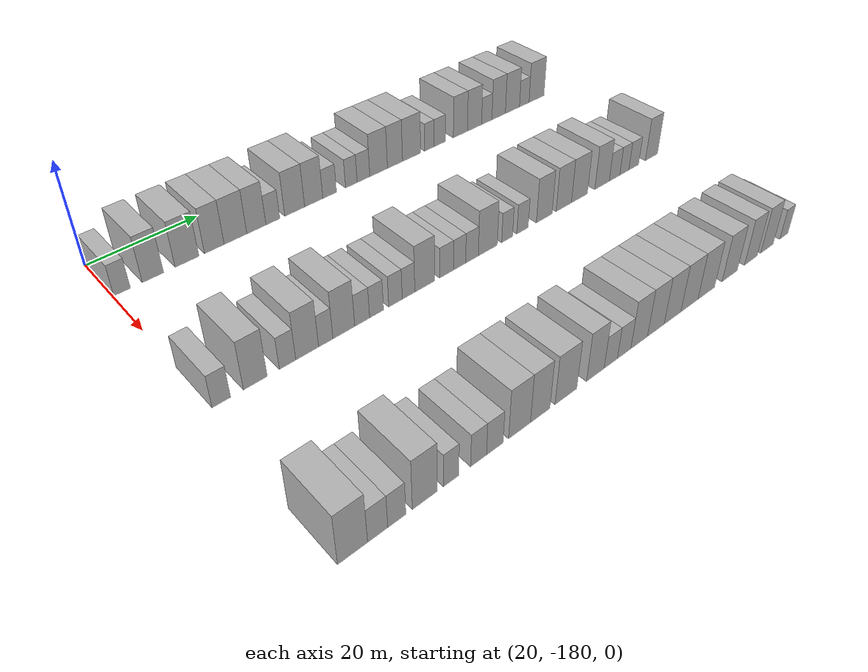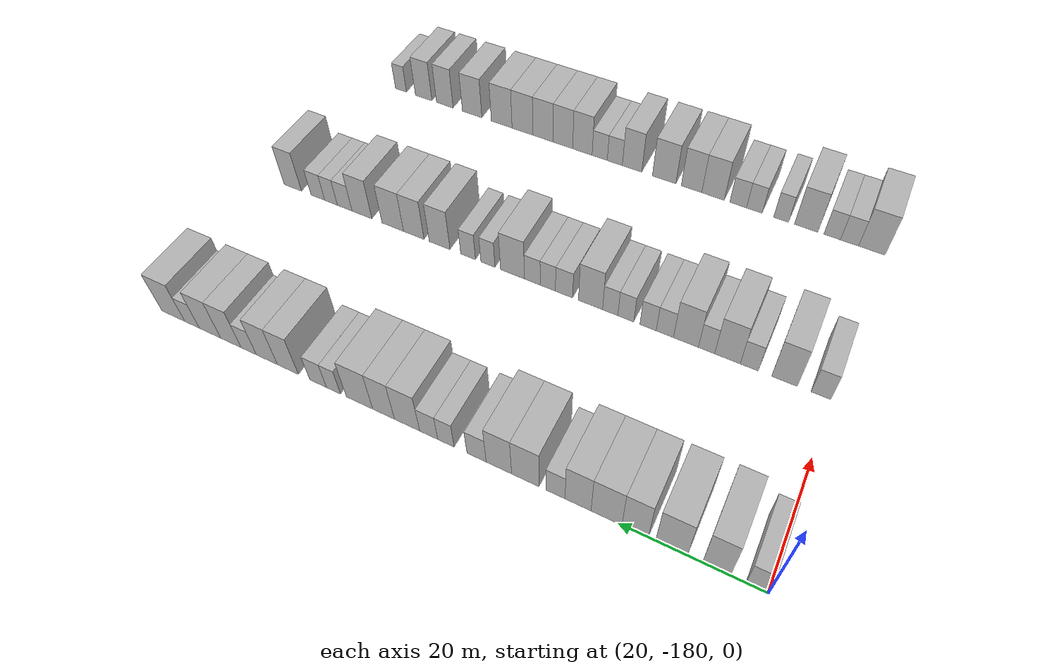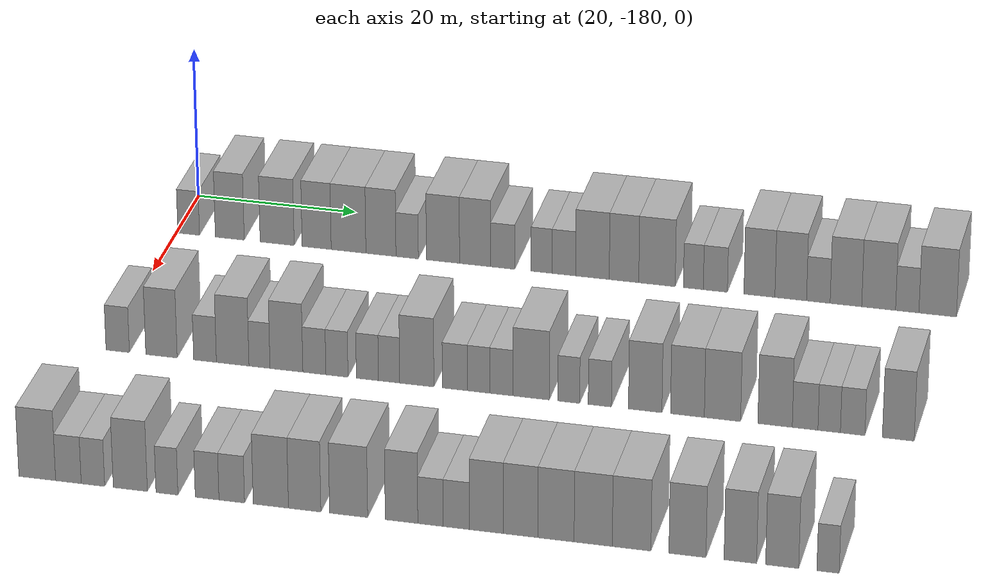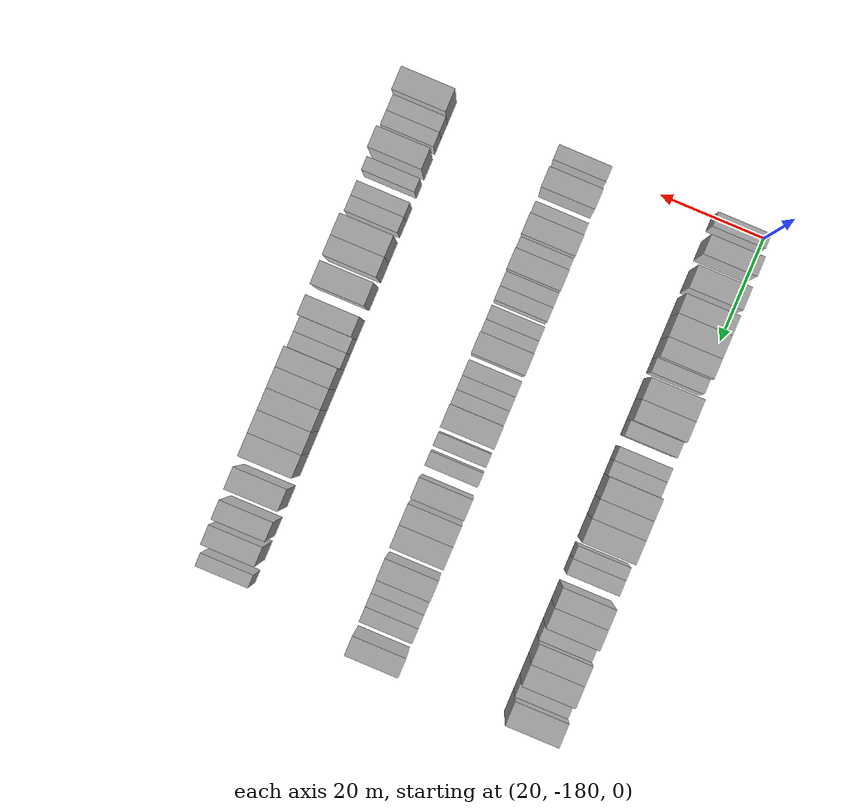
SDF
<sdf version="1.6">
 <world name="default">
  <model name="building_27">
   <static>1</static>
   <pose>25.0000 -178.4467 0 0.000000 0.000000 0.000000</pose>
   <link name="link">
    <pose>0 0 3.00 0 0 0</pose>
    <collision name="collision"><geometry><box><size>10.0000 2.7422 6.0000</size></box></geometry></collision>
    <visual name="visual">
     <cast_shadows>0</cast_shadows>
     <geometry><box><size>10.0000 2.7422 6.0000</size></box></geometry>
     <material>
      <script>
       <uri>model://HANNAS_wall/materials/scripts</uri>
       <uri>model://HANNAS_wall/materials/textures</uri>
       <name>vrc/HANNAS_wall</name>
      </script>
     </material>
    </visual>
   </link>
  </model>
  <model name="building_28">
   <static>1</static>
   <pose>25.0000 -173.2510 0 0.000000 0.000000 0.000000</pose>
   <link name="link">
    <pose>0 0 4.50 0 0 0</pose>
    <collision name="collision"><geometry><box><size>10.0000 3.6491 9.0000</size></box></geometry></collision>
    <visual name="visual">
     <cast_shadows>0</cast_shadows>
     <geometry><box><size>10.0000 3.6491 9.0000</size></box></geometry>
     <material>
      <script>
       <uri>model://HANNAS_wall/materials/scripts</uri>
       <uri>model://HANNAS_wall/materials/textures</uri>
       <name>vrc/HANNAS_wall</name>
      </script>
     </material>
    </visual>
   </link>
  </model>
  <model name="building_29">
   <static>1</static>
   <pose>25.0000 -167.2839 0 0.000000 0.000000 0.000000</pose>
   <link name="link">
    <pose>0 0 4.50 0 0 0</pose>
    <collision name="collision"><geometry><box><size>10.0000 4.2852 9.0000</size></box></geometry></collision>
    <visual name="visual">
     <cast_shadows>0</cast_shadows>
     <geometry><box><size>10.0000 4.2852 9.0000</size></box></geometry>
     <material>
      <script>
       <uri>model://HANNAS_wall/materials/scripts</uri>
       <uri>model://HANNAS_wall/materials/textures</uri>
       <name>vrc/HANNAS_wall</name>
      </script>
     </material>
    </visual>
   </link>
  </model>
  <model name="building_30">
   <static>1</static>
   <pose>25.0000 -162.3185 0 0.000000 0.000000 0.000000</pose>
   <link name="link">
    <pose>0 0 4.50 0 0 0</pose>
    <collision name="collision"><geometry><box><size>10.0000 3.6455 9.0000</size></box></geometry></collision>
    <visual name="visual">
     <cast_shadows>0</cast_shadows>
     <geometry><box><size>10.0000 3.6455 9.0000</size></box></geometry>
     <material>
      <script>
       <uri>model://HANNAS_wall/materials/scripts</uri>
       <uri>model://HANNAS_wall/materials/textures</uri>
       <name>vrc/HANNAS_wall</name>
      </script>
     </material>
    </visual>
   </link>
  </model>
  <model name="building_31">
   <static>1</static>
   <pose>25.0000 -158.3245 0 0.000000 0.000000 0.000000</pose>
   <link name="link">
    <pose>0 0 4.50 0 0 0</pose>
    <collision name="collision"><geometry><box><size>10.0000 4.3426 9.0000</size></box></geometry></collision>
    <visual name="visual">
     <cast_shadows>0</cast_shadows>
     <geometry><box><size>10.0000 4.3426 9.0000</size></box></geometry>
     <material>
      <script>
       <uri>model://HANNAS_wall/materials/scripts</uri>
       <uri>model://HANNAS_wall/materials/textures</uri>
       <name>vrc/HANNAS_wall</name>
      </script>
     </material>
    </visual>
   </link>
  </model>
  <model name="building_32">
   <static>1</static>
   <pose>25.0000 -154.2778 0 0.000000 0.000000 0.000000</pose>
   <link name="link">
    <pose>0 0 4.50 0 0 0</pose>
    <collision name="collision"><geometry><box><size>10.0000 3.7507 9.0000</size></box></geometry></collision>
    <visual name="visual">
     <cast_shadows>0</cast_shadows>
     <geometry><box><size>10.0000 3.7507 9.0000</size></box></geometry>
     <material>
      <script>
       <uri>model://HANNAS_wall/materials/scripts</uri>
       <uri>model://HANNAS_wall/materials/textures</uri>
       <name>vrc/HANNAS_wall</name>
      </script>
     </material>
    </visual>
   </link>
  </model>
  <model name="building_33">
   <static>1</static>
   <pose>25.0000 -151.0073 0 0.000000 0.000000 0.000000</pose>
   <link name="link">
    <pose>0 0 3.00 0 0 0</pose>
    <collision name="collision"><geometry><box><size>10.0000 2.7904 6.0000</size></box></geometry></collision>
    <visual name="visual">
     <cast_shadows>0</cast_shadows>
     <geometry><box><size>10.0000 2.7904 6.0000</size></box></geometry>
     <material>
      <script>
       <uri>model://HANNAS_wall/materials/scripts</uri>
       <uri>model://HANNAS_wall/materials/textures</uri>
       <name>vrc/HANNAS_wall</name>
      </script>
     </material>
    </visual>
   </link>
  </model>
  <model name="building_34">
   <static>1</static>
   <pose>25.0000 -146.5571 0 0.000000 0.000000 0.000000</pose>
   <link name="link">
    <pose>0 0 4.50 0 0 0</pose>
    <collision name="collision"><geometry><box><size>10.0000 4.1099 9.0000</size></box></geometry></collision>
    <visual name="visual">
     <cast_shadows>0</cast_shadows>
     <geometry><box><size>10.0000 4.1099 9.0000</size></box></geometry>
     <material>
      <script>
       <uri>model://HANNAS_wall/materials/scripts</uri>
       <uri>model://HANNAS_wall/materials/textures</uri>
       <name>vrc/HANNAS_wall</name>
      </script>
     </material>
    </visual>
   </link>
  </model>
  <model name="building_35">
   <static>1</static>
   <pose>25.0000 -142.5649 0 0.000000 0.000000 0.000000</pose>
   <link name="link">
    <pose>0 0 4.50 0 0 0</pose>
    <collision name="collision"><geometry><box><size>10.0000 3.8745 9.0000</size></box></geometry></collision>
    <visual name="visual">
     <cast_shadows>0</cast_shadows>
     <geometry><box><size>10.0000 3.8745 9.0000</size></box></geometry>
     <material>
      <script>
       <uri>model://HANNAS_wall/materials/scripts</uri>
       <uri>model://HANNAS_wall/materials/textures</uri>
       <name>vrc/HANNAS_wall</name>
      </script>
     </material>
    </visual>
   </link>
  </model>
  <model name="building_36">
   <static>1</static>
   <pose>25.0000 -139.1422 0 0.000000 0.000000 0.000000</pose>
   <link name="link">
    <pose>0 0 3.00 0 0 0</pose>
    <collision name="collision"><geometry><box><size>10.0000 2.9710 6.0000</size></box></geometry></collision>
    <visual name="visual">
     <cast_shadows>0</cast_shadows>
     <geometry><box><size>10.0000 2.9710 6.0000</size></box></geometry>
     <material>
      <script>
       <uri>model://HANNAS_wall/materials/scripts</uri>
       <uri>model://HANNAS_wall/materials/textures</uri>
       <name>vrc/HANNAS_wall</name>
      </script>
     </material>
    </visual>
   </link>
  </model>
  <model name="building_37">
   <static>1</static>
   <pose>25.0000 -134.3586 0 0.000000 0.000000 0.000000</pose>
   <link name="link">
    <pose>0 0 3.00 0 0 0</pose>
    <collision name="collision"><geometry><box><size>10.0000 2.5962 6.0000</size></box></geometry></collision>
    <visual name="visual">
     <cast_shadows>0</cast_shadows>
     <geometry><box><size>10.0000 2.5962 6.0000</size></box></geometry>
     <material>
      <script>
       <uri>model://HANNAS_wall/materials/scripts</uri>
       <uri>model://HANNAS_wall/materials/textures</uri>
       <name>vrc/HANNAS_wall</name>
      </script>
     </material>
    </visual>
   </link>
  </model>
  <model name="building_38">
   <static>1</static>
   <pose>25.0000 -131.6134 0 0.000000 0.000000 0.000000</pose>
   <link name="link">
    <pose>0 0 3.00 0 0 0</pose>
    <collision name="collision"><geometry><box><size>10.0000 2.8944 6.0000</size></box></geometry></collision>
    <visual name="visual">
     <cast_shadows>0</cast_shadows>
     <geometry><box><size>10.0000 2.8944 6.0000</size></box></geometry>
     <material>
      <script>
       <uri>model://HANNAS_wall/materials/scripts</uri>
       <uri>model://HANNAS_wall/materials/textures</uri>
       <name>vrc/HANNAS_wall</name>
      </script>
     </material>
    </visual>
   </link>
  </model>
  <model name="building_39">
   <static>1</static>
   <pose>25.0000 -128.1045 0 0.000000 0.000000 0.000000</pose>
   <link name="link">
    <pose>0 0 4.50 0 0 0</pose>
    <collision name="collision"><geometry><box><size>10.0000 4.1233 9.0000</size></box></geometry></collision>
    <visual name="visual">
     <cast_shadows>0</cast_shadows>
     <geometry><box><size>10.0000 4.1233 9.0000</size></box></geometry>
     <material>
      <script>
       <uri>model://HANNAS_wall/materials/scripts</uri>
       <uri>model://HANNAS_wall/materials/textures</uri>
       <name>vrc/HANNAS_wall</name>
      </script>
     </material>
    </visual>
   </link>
  </model>
  <model name="building_40">
   <static>1</static>
   <pose>25.0000 -124.2351 0 0.000000 0.000000 0.000000</pose>
   <link name="link">
    <pose>0 0 4.50 0 0 0</pose>
    <collision name="collision"><geometry><box><size>10.0000 3.6154 9.0000</size></box></geometry></collision>
    <visual name="visual">
     <cast_shadows>0</cast_shadows>
     <geometry><box><size>10.0000 3.6154 9.0000</size></box></geometry>
     <material>
      <script>
       <uri>model://HANNAS_wall/materials/scripts</uri>
       <uri>model://HANNAS_wall/materials/textures</uri>
       <name>vrc/HANNAS_wall</name>
      </script>
     </material>
    </visual>
   </link>
  </model>
  <model name="building_41">
   <static>1</static>
   <pose>25.0000 -120.2014 0 0.000000 0.000000 0.000000</pose>
   <link name="link">
    <pose>0 0 4.50 0 0 0</pose>
    <collision name="collision"><geometry><box><size>10.0000 4.4520 9.0000</size></box></geometry></collision>
    <visual name="visual">
     <cast_shadows>0</cast_shadows>
     <geometry><box><size>10.0000 4.4520 9.0000</size></box></geometry>
     <material>
      <script>
       <uri>model://HANNAS_wall/materials/scripts</uri>
       <uri>model://HANNAS_wall/materials/textures</uri>
       <name>vrc/HANNAS_wall</name>
      </script>
     </material>
    </visual>
   </link>
  </model>
  <model name="building_42">
   <static>1</static>
   <pose>25.0000 -115.7638 0 0.000000 0.000000 0.000000</pose>
   <link name="link">
    <pose>0 0 3.00 0 0 0</pose>
    <collision name="collision"><geometry><box><size>10.0000 2.4232 6.0000</size></box></geometry></collision>
    <visual name="visual">
     <cast_shadows>0</cast_shadows>
     <geometry><box><size>10.0000 2.4232 6.0000</size></box></geometry>
     <material>
      <script>
       <uri>model://HANNAS_wall/materials/scripts</uri>
       <uri>model://HANNAS_wall/materials/textures</uri>
       <name>vrc/HANNAS_wall</name>
      </script>
     </material>
    </visual>
   </link>
  </model>
  <model name="building_43">
   <static>1</static>
   <pose>25.0000 -113.0874 0 0.000000 0.000000 0.000000</pose>
   <link name="link">
    <pose>0 0 3.00 0 0 0</pose>
    <collision name="collision"><geometry><box><size>10.0000 2.9295 6.0000</size></box></geometry></collision>
    <visual name="visual">
     <cast_shadows>0</cast_shadows>
     <geometry><box><size>10.0000 2.9295 6.0000</size></box></geometry>
     <material>
      <script>
       <uri>model://HANNAS_wall/materials/scripts</uri>
       <uri>model://HANNAS_wall/materials/textures</uri>
       <name>vrc/HANNAS_wall</name>
      </script>
     </material>
    </visual>
   </link>
  </model>
  <model name="building_44">
   <static>1</static>
   <pose>25.0000 -107.7457 0 0.000000 0.000000 0.000000</pose>
   <link name="link">
    <pose>0 0 4.50 0 0 0</pose>
    <collision name="collision"><geometry><box><size>10.0000 3.7540 9.0000</size></box></geometry></collision>
    <visual name="visual">
     <cast_shadows>0</cast_shadows>
     <geometry><box><size>10.0000 3.7540 9.0000</size></box></geometry>
     <material>
      <script>
       <uri>model://HANNAS_wall/materials/scripts</uri>
       <uri>model://HANNAS_wall/materials/textures</uri>
       <name>vrc/HANNAS_wall</name>
      </script>
     </material>
    </visual>
   </link>
  </model>
  <model name="building_45">
   <static>1</static>
   <pose>25.0000 -103.9578 0 0.000000 0.000000 0.000000</pose>
   <link name="link">
    <pose>0 0 4.50 0 0 0</pose>
    <collision name="collision"><geometry><box><size>10.0000 3.8217 9.0000</size></box></geometry></collision>
    <visual name="visual">
     <cast_shadows>0</cast_shadows>
     <geometry><box><size>10.0000 3.8217 9.0000</size></box></geometry>
     <material>
      <script>
       <uri>model://HANNAS_wall/materials/scripts</uri>
       <uri>model://HANNAS_wall/materials/textures</uri>
       <name>vrc/HANNAS_wall</name>
      </script>
     </material>
    </visual>
   </link>
  </model>
  <model name="building_46">
   <static>1</static>
   <pose>25.0000 -100.6220 0 0.000000 0.000000 0.000000</pose>
   <link name="link">
    <pose>0 0 3.00 0 0 0</pose>
    <collision name="collision"><geometry><box><size>10.0000 2.8498 6.0000</size></box></geometry></collision>
    <visual name="visual">
     <cast_shadows>0</cast_shadows>
     <geometry><box><size>10.0000 2.8498 6.0000</size></box></geometry>
     <material>
      <script>
       <uri>model://HANNAS_wall/materials/scripts</uri>
       <uri>model://HANNAS_wall/materials/textures</uri>
       <name>vrc/HANNAS_wall</name>
      </script>
     </material>
    </visual>
   </link>
  </model>
  <model name="building_47">
   <static>1</static>
   <pose>25.0000 -97.2985 0 0.000000 0.000000 0.000000</pose>
   <link name="link">
    <pose>0 0 4.50 0 0 0</pose>
    <collision name="collision"><geometry><box><size>10.0000 3.7972 9.0000</size></box></geometry></collision>
    <visual name="visual">
     <cast_shadows>0</cast_shadows>
     <geometry><box><size>10.0000 3.7972 9.0000</size></box></geometry>
     <material>
      <script>
       <uri>model://HANNAS_wall/materials/scripts</uri>
       <uri>model://HANNAS_wall/materials/textures</uri>
       <name>vrc/HANNAS_wall</name>
      </script>
     </material>
    </visual>
   </link>
  </model>
  <model name="building_48">
   <static>1</static>
   <pose>25.0000 -93.3656 0 0.000000 0.000000 0.000000</pose>
   <link name="link">
    <pose>0 0 4.50 0 0 0</pose>
    <collision name="collision"><geometry><box><size>10.0000 4.0687 9.0000</size></box></geometry></collision>
    <visual name="visual">
     <cast_shadows>0</cast_shadows>
     <geometry><box><size>10.0000 4.0687 9.0000</size></box></geometry>
     <material>
      <script>
       <uri>model://HANNAS_wall/materials/scripts</uri>
       <uri>model://HANNAS_wall/materials/textures</uri>
       <name>vrc/HANNAS_wall</name>
      </script>
     </material>
    </visual>
   </link>
  </model>
  <model name="building_49">
   <static>1</static>
   <pose>25.0000 -89.9338 0 0.000000 0.000000 0.000000</pose>
   <link name="link">
    <pose>0 0 3.00 0 0 0</pose>
    <collision name="collision"><geometry><box><size>10.0000 2.7948 6.0000</size></box></geometry></collision>
    <visual name="visual">
     <cast_shadows>0</cast_shadows>
     <geometry><box><size>10.0000 2.7948 6.0000</size></box></geometry>
     <material>
      <script>
       <uri>model://HANNAS_wall/materials/scripts</uri>
       <uri>model://HANNAS_wall/materials/textures</uri>
       <name>vrc/HANNAS_wall</name>
      </script>
     </material>
    </visual>
   </link>
  </model>
  <model name="building_50">
   <static>1</static>
   <pose>25.0000 -86.2893 0 0.000000 0.000000 0.000000</pose>
   <link name="link">
    <pose>0 0 4.50 0 0 0</pose>
    <collision name="collision"><geometry><box><size>10.0000 4.4942 9.0000</size></box></geometry></collision>
    <visual name="visual">
     <cast_shadows>0</cast_shadows>
     <geometry><box><size>10.0000 4.4942 9.0000</size></box></geometry>
     <material>
      <script>
       <uri>model://HANNAS_wall/materials/scripts</uri>
       <uri>model://HANNAS_wall/materials/textures</uri>
       <name>vrc/HANNAS_wall</name>
      </script>
     </material>
    </visual>
   </link>
  </model>
  <model name="building_167">
   <static>1</static>
   <pose>55.0000 -178.4823 0 0.000000 0.000000 0.000000</pose>
   <link name="link">
    <pose>0 0 3.00 0 0 0</pose>
    <collision name="collision"><geometry><box><size>10.0000 2.8400 6.0000</size></box></geometry></collision>
    <visual name="visual">
     <cast_shadows>0</cast_shadows>
     <geometry><box><size>10.0000 2.8400 6.0000</size></box></geometry>
     <material>
      <script>
       <uri>model://HANNAS_wall/materials/scripts</uri>
       <uri>model://HANNAS_wall/materials/textures</uri>
       <name>vrc/HANNAS_wall</name>
      </script>
     </material>
    </visual>
   </link>
  </model>
  <model name="building_168">
   <static>1</static>
   <pose>55.0000 -173.1579 0 0.000000 0.000000 0.000000</pose>
   <link name="link">
    <pose>0 0 4.50 0 0 0</pose>
    <collision name="collision"><geometry><box><size>10.0000 3.8088 9.0000</size></box></geometry></collision>
    <visual name="visual">
     <cast_shadows>0</cast_shadows>
     <geometry><box><size>10.0000 3.8088 9.0000</size></box></geometry>
     <material>
      <script>
       <uri>model://HANNAS_wall/materials/scripts</uri>
       <uri>model://HANNAS_wall/materials/textures</uri>
       <name>vrc/HANNAS_wall</name>
      </script>
     </material>
    </visual>
   </link>
  </model>
  <model name="building_169">
   <static>1</static>
   <pose>55.0000 -167.8806 0 0.000000 0.000000 0.000000</pose>
   <link name="link">
    <pose>0 0 3.00 0 0 0</pose>
    <collision name="collision"><geometry><box><size>10.0000 2.7459 6.0000</size></box></geometry></collision>
    <visual name="visual">
     <cast_shadows>0</cast_shadows>
     <geometry><box><size>10.0000 2.7459 6.0000</size></box></geometry>
     <material>
      <script>
       <uri>model://HANNAS_wall/materials/scripts</uri>
       <uri>model://HANNAS_wall/materials/textures</uri>
       <name>vrc/HANNAS_wall</name>
      </script>
     </material>
    </visual>
   </link>
  </model>
  <model name="building_170">
   <static>1</static>
   <pose>55.0000 -164.5421 0 0.000000 0.000000 0.000000</pose>
   <link name="link">
    <pose>0 0 4.50 0 0 0</pose>
    <collision name="collision"><geometry><box><size>10.0000 3.9311 9.0000</size></box></geometry></collision>
    <visual name="visual">
     <cast_shadows>0</cast_shadows>
     <geometry><box><size>10.0000 3.9311 9.0000</size></box></geometry>
     <material>
      <script>
       <uri>model://HANNAS_wall/materials/scripts</uri>
       <uri>model://HANNAS_wall/materials/textures</uri>
       <name>vrc/HANNAS_wall</name>
      </script>
     </material>
    </visual>
   </link>
  </model>
  <model name="building_171">
   <static>1</static>
   <pose>55.0000 -161.3103 0 0.000000 0.000000 0.000000</pose>
   <link name="link">
    <pose>0 0 3.00 0 0 0</pose>
    <collision name="collision"><geometry><box><size>10.0000 2.5326 6.0000</size></box></geometry></collision>
    <visual name="visual">
     <cast_shadows>0</cast_shadows>
     <geometry><box><size>10.0000 2.5326 6.0000</size></box></geometry>
     <material>
      <script>
       <uri>model://HANNAS_wall/materials/scripts</uri>
       <uri>model://HANNAS_wall/materials/textures</uri>
       <name>vrc/HANNAS_wall</name>
      </script>
     </material>
    </visual>
   </link>
  </model>
  <model name="building_172">
   <static>1</static>
   <pose>55.0000 -158.0698 0 0.000000 0.000000 0.000000</pose>
   <link name="link">
    <pose>0 0 4.50 0 0 0</pose>
    <collision name="collision"><geometry><box><size>10.0000 3.9484 9.0000</size></box></geometry></collision>
    <visual name="visual">
     <cast_shadows>0</cast_shadows>
     <geometry><box><size>10.0000 3.9484 9.0000</size></box></geometry>
     <material>
      <script>
       <uri>model://HANNAS_wall/materials/scripts</uri>
       <uri>model://HANNAS_wall/materials/textures</uri>
       <name>vrc/HANNAS_wall</name>
      </script>
     </material>
    </visual>
   </link>
  </model>
  <model name="building_173">
   <static>1</static>
   <pose>55.0000 -154.7131 0 0.000000 0.000000 0.000000</pose>
   <link name="link">
    <pose>0 0 3.00 0 0 0</pose>
    <collision name="collision"><geometry><box><size>10.0000 2.7648 6.0000</size></box></geometry></collision>
    <visual name="visual">
     <cast_shadows>0</cast_shadows>
     <geometry><box><size>10.0000 2.7648 6.0000</size></box></geometry>
     <material>
      <script>
       <uri>model://HANNAS_wall/materials/scripts</uri>
       <uri>model://HANNAS_wall/materials/textures</uri>
       <name>vrc/HANNAS_wall</name>
      </script>
     </material>
    </visual>
   </link>
  </model>
  <model name="building_174">
   <static>1</static>
   <pose>55.0000 -152.0063 0 0.000000 0.000000 0.000000</pose>
   <link name="link">
    <pose>0 0 3.00 0 0 0</pose>
    <collision name="collision"><geometry><box><size>10.0000 2.6489 6.0000</size></box></geometry></collision>
    <visual name="visual">
     <cast_shadows>0</cast_shadows>
     <geometry><box><size>10.0000 2.6489 6.0000</size></box></geometry>
     <material>
      <script>
       <uri>model://HANNAS_wall/materials/scripts</uri>
       <uri>model://HANNAS_wall/materials/textures</uri>
       <name>vrc/HANNAS_wall</name>
      </script>
     </material>
    </visual>
   </link>
  </model>
  <model name="building_175">
   <static>1</static>
   <pose>55.0000 -148.3621 0 0.000000 0.000000 0.000000</pose>
   <link name="link">
    <pose>0 0 3.00 0 0 0</pose>
    <collision name="collision"><geometry><box><size>10.0000 2.6394 6.0000</size></box></geometry></collision>
    <visual name="visual">
     <cast_shadows>0</cast_shadows>
     <geometry><box><size>10.0000 2.6394 6.0000</size></box></geometry>
     <material>
      <script>
       <uri>model://HANNAS_wall/materials/scripts</uri>
       <uri>model://HANNAS_wall/materials/textures</uri>
       <name>vrc/HANNAS_wall</name>
      </script>
     </material>
    </visual>
   </link>
  </model>
  <model name="building_176">
   <static>1</static>
   <pose>55.0000 -145.7772 0 0.000000 0.000000 0.000000</pose>
   <link name="link">
    <pose>0 0 3.00 0 0 0</pose>
    <collision name="collision"><geometry><box><size>10.0000 2.5305 6.0000</size></box></geometry></collision>
    <visual name="visual">
     <cast_shadows>0</cast_shadows>
     <geometry><box><size>10.0000 2.5305 6.0000</size></box></geometry>
     <material>
      <script>
       <uri>model://HANNAS_wall/materials/scripts</uri>
       <uri>model://HANNAS_wall/materials/textures</uri>
       <name>vrc/HANNAS_wall</name>
      </script>
     </material>
    </visual>
   </link>
  </model>
  <model name="building_177">
   <static>1</static>
   <pose>55.0000 -142.4748 0 0.000000 0.000000 0.000000</pose>
   <link name="link">
    <pose>0 0 4.50 0 0 0</pose>
    <collision name="collision"><geometry><box><size>10.0000 4.0742 9.0000</size></box></geometry></collision>
    <visual name="visual">
     <cast_shadows>0</cast_shadows>
     <geometry><box><size>10.0000 4.0742 9.0000</size></box></geometry>
     <material>
      <script>
       <uri>model://HANNAS_wall/materials/scripts</uri>
       <uri>model://HANNAS_wall/materials/textures</uri>
       <name>vrc/HANNAS_wall</name>
      </script>
     </material>
    </visual>
   </link>
  </model>
  <model name="building_178">
   <static>1</static>
   <pose>55.0000 -137.9572 0 0.000000 0.000000 0.000000</pose>
   <link name="link">
    <pose>0 0 3.00 0 0 0</pose>
    <collision name="collision"><geometry><box><size>10.0000 2.9611 6.0000</size></box></geometry></collision>
    <visual name="visual">
     <cast_shadows>0</cast_shadows>
     <geometry><box><size>10.0000 2.9611 6.0000</size></box></geometry>
     <material>
      <script>
       <uri>model://HANNAS_wall/materials/scripts</uri>
       <uri>model://HANNAS_wall/materials/textures</uri>
       <name>vrc/HANNAS_wall</name>
      </script>
     </material>
    </visual>
   </link>
  </model>
  <model name="building_179">
   <static>1</static>
   <pose>55.0000 -135.1537 0 0.000000 0.000000 0.000000</pose>
   <link name="link">
    <pose>0 0 3.00 0 0 0</pose>
    <collision name="collision"><geometry><box><size>10.0000 2.6460 6.0000</size></box></geometry></collision>
    <visual name="visual">
     <cast_shadows>0</cast_shadows>
     <geometry><box><size>10.0000 2.6460 6.0000</size></box></geometry>
     <material>
      <script>
       <uri>model://HANNAS_wall/materials/scripts</uri>
       <uri>model://HANNAS_wall/materials/textures</uri>
       <name>vrc/HANNAS_wall</name>
      </script>
     </material>
    </visual>
   </link>
  </model>
  <model name="building_180">
   <static>1</static>
   <pose>55.0000 -132.4491 0 0.000000 0.000000 0.000000</pose>
   <link name="link">
    <pose>0 0 3.00 0 0 0</pose>
    <collision name="collision"><geometry><box><size>10.0000 2.7632 6.0000</size></box></geometry></collision>
    <visual name="visual">
     <cast_shadows>0</cast_shadows>
     <geometry><box><size>10.0000 2.7632 6.0000</size></box></geometry>
     <material>
      <script>
       <uri>model://HANNAS_wall/materials/scripts</uri>
       <uri>model://HANNAS_wall/materials/textures</uri>
       <name>vrc/HANNAS_wall</name>
      </script>
     </material>
    </visual>
   </link>
  </model>
  <model name="building_181">
   <static>1</static>
   <pose>55.0000 -128.9226 0 0.000000 0.000000 0.000000</pose>
   <link name="link">
    <pose>0 0 4.50 0 0 0</pose>
    <collision name="collision"><geometry><box><size>10.0000 4.2898 9.0000</size></box></geometry></collision>
    <visual name="visual">
     <cast_shadows>0</cast_shadows>
     <geometry><box><size>10.0000 4.2898 9.0000</size></box></geometry>
     <material>
      <script>
       <uri>model://HANNAS_wall/materials/scripts</uri>
       <uri>model://HANNAS_wall/materials/textures</uri>
       <name>vrc/HANNAS_wall</name>
      </script>
     </material>
    </visual>
   </link>
  </model>
  <model name="building_182">
   <static>1</static>
   <pose>55.0000 -124.4945 0 0.000000 0.000000 0.000000</pose>
   <link name="link">
    <pose>0 0 3.00 0 0 0</pose>
    <collision name="collision"><geometry><box><size>10.0000 2.5666 6.0000</size></box></geometry></collision>
    <visual name="visual">
     <cast_shadows>0</cast_shadows>
     <geometry><box><size>10.0000 2.5666 6.0000</size></box></geometry>
     <material>
      <script>
       <uri>model://HANNAS_wall/materials/scripts</uri>
       <uri>model://HANNAS_wall/materials/textures</uri>
       <name>vrc/HANNAS_wall</name>
      </script>
     </material>
    </visual>
   </link>
  </model>
  <model name="building_183">
   <static>1</static>
   <pose>55.0000 -120.8527 0 0.000000 0.000000 0.000000</pose>
   <link name="link">
    <pose>0 0 3.00 0 0 0</pose>
    <collision name="collision"><geometry><box><size>10.0000 2.7170 6.0000</size></box></geometry></collision>
    <visual name="visual">
     <cast_shadows>0</cast_shadows>
     <geometry><box><size>10.0000 2.7170 6.0000</size></box></geometry>
     <material>
      <script>
       <uri>model://HANNAS_wall/materials/scripts</uri>
       <uri>model://HANNAS_wall/materials/textures</uri>
       <name>vrc/HANNAS_wall</name>
      </script>
     </material>
    </visual>
   </link>
  </model>
  <model name="building_184">
   <static>1</static>
   <pose>55.0000 -115.5406 0 0.000000 0.000000 0.000000</pose>
   <link name="link">
    <pose>0 0 4.50 0 0 0</pose>
    <collision name="collision"><geometry><box><size>10.0000 3.9071 9.0000</size></box></geometry></collision>
    <visual name="visual">
     <cast_shadows>0</cast_shadows>
     <geometry><box><size>10.0000 3.9071 9.0000</size></box></geometry>
     <material>
      <script>
       <uri>model://HANNAS_wall/materials/scripts</uri>
       <uri>model://HANNAS_wall/materials/textures</uri>
       <name>vrc/HANNAS_wall</name>
      </script>
     </material>
    </visual>
   </link>
  </model>
  <model name="building_185">
   <static>1</static>
   <pose>55.0000 -110.6169 0 0.000000 0.000000 0.000000</pose>
   <link name="link">
    <pose>0 0 4.50 0 0 0</pose>
    <collision name="collision"><geometry><box><size>10.0000 3.9405 9.0000</size></box></geometry></collision>
    <visual name="visual">
     <cast_shadows>0</cast_shadows>
     <geometry><box><size>10.0000 3.9405 9.0000</size></box></geometry>
     <material>
      <script>
       <uri>model://HANNAS_wall/materials/scripts</uri>
       <uri>model://HANNAS_wall/materials/textures</uri>
       <name>vrc/HANNAS_wall</name>
      </script>
     </material>
    </visual>
   </link>
  </model>
  <model name="building_186">
   <static>1</static>
   <pose>55.0000 -106.5384 0 0.000000 0.000000 0.000000</pose>
   <link name="link">
    <pose>0 0 4.50 0 0 0</pose>
    <collision name="collision"><geometry><box><size>10.0000 4.2164 9.0000</size></box></geometry></collision>
    <visual name="visual">
     <cast_shadows>0</cast_shadows>
     <geometry><box><size>10.0000 4.2164 9.0000</size></box></geometry>
     <material>
      <script>
       <uri>model://HANNAS_wall/materials/scripts</uri>
       <uri>model://HANNAS_wall/materials/textures</uri>
       <name>vrc/HANNAS_wall</name>
      </script>
     </material>
    </visual>
   </link>
  </model>
  <model name="building_187">
   <static>1</static>
   <pose>55.0000 -100.4392 0 0.000000 0.000000 0.000000</pose>
   <link name="link">
    <pose>0 0 4.50 0 0 0</pose>
    <collision name="collision"><geometry><box><size>10.0000 3.9820 9.0000</size></box></geometry></collision>
    <visual name="visual">
     <cast_shadows>0</cast_shadows>
     <geometry><box><size>10.0000 3.9820 9.0000</size></box></geometry>
     <material>
      <script>
       <uri>model://HANNAS_wall/materials/scripts</uri>
       <uri>model://HANNAS_wall/materials/textures</uri>
       <name>vrc/HANNAS_wall</name>
      </script>
     </material>
    </visual>
   </link>
  </model>
  <model name="building_188">
   <static>1</static>
   <pose>55.0000 -96.9670 0 0.000000 0.000000 0.000000</pose>
   <link name="link">
    <pose>0 0 3.00 0 0 0</pose>
    <collision name="collision"><geometry><box><size>10.0000 2.9623 6.0000</size></box></geometry></collision>
    <visual name="visual">
     <cast_shadows>0</cast_shadows>
     <geometry><box><size>10.0000 2.9623 6.0000</size></box></geometry>
     <material>
      <script>
       <uri>model://HANNAS_wall/materials/scripts</uri>
       <uri>model://HANNAS_wall/materials/textures</uri>
       <name>vrc/HANNAS_wall</name>
      </script>
     </material>
    </visual>
   </link>
  </model>
  <model name="building_189">
   <static>1</static>
   <pose>55.0000 -94.1926 0 0.000000 0.000000 0.000000</pose>
   <link name="link">
    <pose>0 0 3.00 0 0 0</pose>
    <collision name="collision"><geometry><box><size>10.0000 2.5866 6.0000</size></box></geometry></collision>
    <visual name="visual">
     <cast_shadows>0</cast_shadows>
     <geometry><box><size>10.0000 2.5866 6.0000</size></box></geometry>
     <material>
      <script>
       <uri>model://HANNAS_wall/materials/scripts</uri>
       <uri>model://HANNAS_wall/materials/textures</uri>
       <name>vrc/HANNAS_wall</name>
      </script>
     </material>
    </visual>
   </link>
  </model>
  <model name="building_190">
   <static>1</static>
   <pose>55.0000 -91.4847 0 0.000000 0.000000 0.000000</pose>
   <link name="link">
    <pose>0 0 3.00 0 0 0</pose>
    <collision name="collision"><geometry><box><size>10.0000 2.8292 6.0000</size></box></geometry></collision>
    <visual name="visual">
     <cast_shadows>0</cast_shadows>
     <geometry><box><size>10.0000 2.8292 6.0000</size></box></geometry>
     <material>
      <script>
       <uri>model://HANNAS_wall/materials/scripts</uri>
       <uri>model://HANNAS_wall/materials/textures</uri>
       <name>vrc/HANNAS_wall</name>
      </script>
     </material>
    </visual>
   </link>
  </model>
  <model name="building_191">
   <static>1</static>
   <pose>55.0000 -86.2502 0 0.000000 0.000000 0.000000</pose>
   <link name="link">
    <pose>0 0 4.50 0 0 0</pose>
    <collision name="collision"><geometry><box><size>10.0000 3.6398 9.0000</size></box></geometry></collision>
    <visual name="visual">
     <cast_shadows>0</cast_shadows>
     <geometry><box><size>10.0000 3.6398 9.0000</size></box></geometry>
     <material>
      <script>
       <uri>model://HANNAS_wall/materials/scripts</uri>
       <uri>model://HANNAS_wall/materials/textures</uri>
       <name>vrc/HANNAS_wall</name>
      </script>
     </material>
    </visual>
   </link>
  </model>
  <model name="building_310">
   <static>1</static>
   <pose>85.0000 -178.8844 0 0.000000 0.000000 0.000000</pose>
   <link name="link">
    <pose>0 0 4.50 0 0 0</pose>
    <collision name="collision"><geometry><box><size>10.0000 4.2908 9.0000</size></box></geometry></collision>
    <visual name="visual">
     <cast_shadows>0</cast_shadows>
     <geometry><box><size>10.0000 4.2908 9.0000</size></box></geometry>
     <material>
      <script>
       <uri>model://HANNAS_wall/materials/scripts</uri>
       <uri>model://HANNAS_wall/materials/textures</uri>
       <name>vrc/HANNAS_wall</name>
      </script>
     </material>
    </visual>
   </link>
  </model>
  <model name="building_311">
   <static>1</static>
   <pose>85.0000 -175.2470 0 0.000000 0.000000 0.000000</pose>
   <link name="link">
    <pose>0 0 3.00 0 0 0</pose>
    <collision name="collision"><geometry><box><size>10.0000 2.9841 6.0000</size></box></geometry></collision>
    <visual name="visual">
     <cast_shadows>0</cast_shadows>
     <geometry><box><size>10.0000 2.9841 6.0000</size></box></geometry>
     <material>
      <script>
       <uri>model://HANNAS_wall/materials/scripts</uri>
       <uri>model://HANNAS_wall/materials/textures</uri>
       <name>vrc/HANNAS_wall</name>
      </script>
     </material>
    </visual>
   </link>
  </model>
  <model name="building_312">
   <static>1</static>
   <pose>85.0000 -172.3847 0 0.000000 0.000000 0.000000</pose>
   <link name="link">
    <pose>0 0 3.00 0 0 0</pose>
    <collision name="collision"><geometry><box><size>10.0000 2.7404 6.0000</size></box></geometry></collision>
    <visual name="visual">
     <cast_shadows>0</cast_shadows>
     <geometry><box><size>10.0000 2.7404 6.0000</size></box></geometry>
     <material>
      <script>
       <uri>model://HANNAS_wall/materials/scripts</uri>
       <uri>model://HANNAS_wall/materials/textures</uri>
       <name>vrc/HANNAS_wall</name>
      </script>
     </material>
    </visual>
   </link>
  </model>
  <model name="building_313">
   <static>1</static>
   <pose>85.0000 -168.0364 0 0.000000 0.000000 0.000000</pose>
   <link name="link">
    <pose>0 0 4.50 0 0 0</pose>
    <collision name="collision"><geometry><box><size>10.0000 3.9562 9.0000</size></box></geometry></collision>
    <visual name="visual">
     <cast_shadows>0</cast_shadows>
     <geometry><box><size>10.0000 3.9562 9.0000</size></box></geometry>
     <material>
      <script>
       <uri>model://HANNAS_wall/materials/scripts</uri>
       <uri>model://HANNAS_wall/materials/textures</uri>
       <name>vrc/HANNAS_wall</name>
      </script>
     </material>
    </visual>
   </link>
  </model>
  <model name="building_314">
   <static>1</static>
   <pose>85.0000 -163.7865 0 0.000000 0.000000 0.000000</pose>
   <link name="link">
    <pose>0 0 3.00 0 0 0</pose>
    <collision name="collision"><geometry><box><size>10.0000 2.5435 6.0000</size></box></geometry></collision>
    <visual name="visual">
     <cast_shadows>0</cast_shadows>
     <geometry><box><size>10.0000 2.5435 6.0000</size></box></geometry>
     <material>
      <script>
       <uri>model://HANNAS_wall/materials/scripts</uri>
       <uri>model://HANNAS_wall/materials/textures</uri>
       <name>vrc/HANNAS_wall</name>
      </script>
     </material>
    </visual>
   </link>
  </model>
  <model name="building_315">
   <static>1</static>
   <pose>85.0000 -159.1467 0 0.000000 0.000000 0.000000</pose>
   <link name="link">
    <pose>0 0 3.00 0 0 0</pose>
    <collision name="collision"><geometry><box><size>10.0000 2.7361 6.0000</size></box></geometry></collision>
    <visual name="visual">
     <cast_shadows>0</cast_shadows>
     <geometry><box><size>10.0000 2.7361 6.0000</size></box></geometry>
     <material>
      <script>
       <uri>model://HANNAS_wall/materials/scripts</uri>
       <uri>model://HANNAS_wall/materials/textures</uri>
       <name>vrc/HANNAS_wall</name>
      </script>
     </material>
    </visual>
   </link>
  </model>
  <model name="building_316">
   <static>1</static>
   <pose>85.0000 -156.3064 0 0.000000 0.000000 0.000000</pose>
   <link name="link">
    <pose>0 0 3.00 0 0 0</pose>
    <collision name="collision"><geometry><box><size>10.0000 2.9445 6.0000</size></box></geometry></collision>
    <visual name="visual">
     <cast_shadows>0</cast_shadows>
     <geometry><box><size>10.0000 2.9445 6.0000</size></box></geometry>
     <material>
      <script>
       <uri>model://HANNAS_wall/materials/scripts</uri>
       <uri>model://HANNAS_wall/materials/textures</uri>
       <name>vrc/HANNAS_wall</name>
      </script>
     </material>
    </visual>
   </link>
  </model>
  <model name="building_317">
   <static>1</static>
   <pose>85.0000 -151.8114 0 0.000000 0.000000 0.000000</pose>
   <link name="link">
    <pose>0 0 4.50 0 0 0</pose>
    <collision name="collision"><geometry><box><size>10.0000 4.0455 9.0000</size></box></geometry></collision>
    <visual name="visual">
     <cast_shadows>0</cast_shadows>
     <geometry><box><size>10.0000 4.0455 9.0000</size></box></geometry>
     <material>
      <script>
       <uri>model://HANNAS_wall/materials/scripts</uri>
       <uri>model://HANNAS_wall/materials/textures</uri>
       <name>vrc/HANNAS_wall</name>
      </script>
     </material>
    </visual>
   </link>
  </model>
  <model name="building_318">
   <static>1</static>
   <pose>85.0000 -147.9320 0 0.000000 0.000000 0.000000</pose>
   <link name="link">
    <pose>0 0 4.50 0 0 0</pose>
    <collision name="collision"><geometry><box><size>10.0000 3.7133 9.0000</size></box></geometry></collision>
    <visual name="visual">
     <cast_shadows>0</cast_shadows>
     <geometry><box><size>10.0000 3.7133 9.0000</size></box></geometry>
     <material>
      <script>
       <uri>model://HANNAS_wall/materials/scripts</uri>
       <uri>model://HANNAS_wall/materials/textures</uri>
       <name>vrc/HANNAS_wall</name>
      </script>
     </material>
    </visual>
   </link>
  </model>
  <model name="building_319">
   <static>1</static>
   <pose>85.0000 -142.9002 0 0.000000 0.000000 0.000000</pose>
   <link name="link">
    <pose>0 0 4.50 0 0 0</pose>
    <collision name="collision"><geometry><box><size>10.0000 4.3502 9.0000</size></box></geometry></collision>
    <visual name="visual">
     <cast_shadows>0</cast_shadows>
     <geometry><box><size>10.0000 4.3502 9.0000</size></box></geometry>
     <material>
      <script>
       <uri>model://HANNAS_wall/materials/scripts</uri>
       <uri>model://HANNAS_wall/materials/textures</uri>
       <name>vrc/HANNAS_wall</name>
      </script>
     </material>
    </visual>
   </link>
  </model>
  <model name="building_320">
   <static>1</static>
   <pose>85.0000 -136.8771 0 0.000000 0.000000 0.000000</pose>
   <link name="link">
    <pose>0 0 4.50 0 0 0</pose>
    <collision name="collision"><geometry><box><size>10.0000 3.6958 9.0000</size></box></geometry></collision>
    <visual name="visual">
     <cast_shadows>0</cast_shadows>
     <geometry><box><size>10.0000 3.6958 9.0000</size></box></geometry>
     <material>
      <script>
       <uri>model://HANNAS_wall/materials/scripts</uri>
       <uri>model://HANNAS_wall/materials/textures</uri>
       <name>vrc/HANNAS_wall</name>
      </script>
     </material>
    </visual>
   </link>
  </model>
  <model name="building_321">
   <static>1</static>
   <pose>85.0000 -133.5867 0 0.000000 0.000000 0.000000</pose>
   <link name="link">
    <pose>0 0 3.00 0 0 0</pose>
    <collision name="collision"><geometry><box><size>10.0000 2.8851 6.0000</size></box></geometry></collision>
    <visual name="visual">
     <cast_shadows>0</cast_shadows>
     <geometry><box><size>10.0000 2.8851 6.0000</size></box></geometry>
     <material>
      <script>
       <uri>model://HANNAS_wall/materials/scripts</uri>
       <uri>model://HANNAS_wall/materials/textures</uri>
       <name>vrc/HANNAS_wall</name>
      </script>
     </material>
    </visual>
   </link>
  </model>
  <model name="building_322">
   <static>1</static>
   <pose>85.0000 -130.6678 0 0.000000 0.000000 0.000000</pose>
   <link name="link">
    <pose>0 0 3.00 0 0 0</pose>
    <collision name="collision"><geometry><box><size>10.0000 2.9527 6.0000</size></box></geometry></collision>
    <visual name="visual">
     <cast_shadows>0</cast_shadows>
     <geometry><box><size>10.0000 2.9527 6.0000</size></box></geometry>
     <material>
      <script>
       <uri>model://HANNAS_wall/materials/scripts</uri>
       <uri>model://HANNAS_wall/materials/textures</uri>
       <name>vrc/HANNAS_wall</name>
      </script>
     </material>
    </visual>
   </link>
  </model>
  <model name="building_323">
   <static>1</static>
   <pose>85.0000 -127.2836 0 0.000000 0.000000 0.000000</pose>
   <link name="link">
    <pose>0 0 4.50 0 0 0</pose>
    <collision name="collision"><geometry><box><size>10.0000 3.8157 9.0000</size></box></geometry></collision>
    <visual name="visual">
     <cast_shadows>0</cast_shadows>
     <geometry><box><size>10.0000 3.8157 9.0000</size></box></geometry>
     <material>
      <script>
       <uri>model://HANNAS_wall/materials/scripts</uri>
       <uri>model://HANNAS_wall/materials/textures</uri>
       <name>vrc/HANNAS_wall</name>
      </script>
     </material>
    </visual>
   </link>
  </model>
  <model name="building_324">
   <static>1</static>
   <pose>85.0000 -123.4180 0 0.000000 0.000000 0.000000</pose>
   <link name="link">
    <pose>0 0 4.50 0 0 0</pose>
    <collision name="collision"><geometry><box><size>10.0000 3.9155 9.0000</size></box></geometry></collision>
    <visual name="visual">
     <cast_shadows>0</cast_shadows>
     <geometry><box><size>10.0000 3.9155 9.0000</size></box></geometry>
     <material>
      <script>
       <uri>model://HANNAS_wall/materials/scripts</uri>
       <uri>model://HANNAS_wall/materials/textures</uri>
       <name>vrc/HANNAS_wall</name>
      </script>
     </material>
    </visual>
   </link>
  </model>
  <model name="building_325">
   <static>1</static>
   <pose>85.0000 -119.4267 0 0.000000 0.000000 0.000000</pose>
   <link name="link">
    <pose>0 0 4.50 0 0 0</pose>
    <collision name="collision"><geometry><box><size>10.0000 4.0671 9.0000</size></box></geometry></collision>
    <visual name="visual">
     <cast_shadows>0</cast_shadows>
     <geometry><box><size>10.0000 4.0671 9.0000</size></box></geometry>
     <material>
      <script>
       <uri>model://HANNAS_wall/materials/scripts</uri>
       <uri>model://HANNAS_wall/materials/textures</uri>
       <name>vrc/HANNAS_wall</name>
      </script>
     </material>
    </visual>
   </link>
  </model>
  <model name="building_326">
   <static>1</static>
   <pose>85.0000 -115.2537 0 0.000000 0.000000 0.000000</pose>
   <link name="link">
    <pose>0 0 4.50 0 0 0</pose>
    <collision name="collision"><geometry><box><size>10.0000 4.2789 9.0000</size></box></geometry></collision>
    <visual name="visual">
     <cast_shadows>0</cast_shadows>
     <geometry><box><size>10.0000 4.2789 9.0000</size></box></geometry>
     <material>
      <script>
       <uri>model://HANNAS_wall/materials/scripts</uri>
       <uri>model://HANNAS_wall/materials/textures</uri>
       <name>vrc/HANNAS_wall</name>
      </script>
     </material>
    </visual>
   </link>
  </model>
  <model name="building_327">
   <static>1</static>
   <pose>85.0000 -110.9561 0 0.000000 0.000000 0.000000</pose>
   <link name="link">
    <pose>0 0 4.50 0 0 0</pose>
    <collision name="collision"><geometry><box><size>10.0000 4.3162 9.0000</size></box></geometry></collision>
    <visual name="visual">
     <cast_shadows>0</cast_shadows>
     <geometry><box><size>10.0000 4.3162 9.0000</size></box></geometry>
     <material>
      <script>
       <uri>model://HANNAS_wall/materials/scripts</uri>
       <uri>model://HANNAS_wall/materials/textures</uri>
       <name>vrc/HANNAS_wall</name>
      </script>
     </material>
    </visual>
   </link>
  </model>
  <model name="building_328">
   <static>1</static>
   <pose>85.0000 -104.7361 0 0.000000 0.000000 0.000000</pose>
   <link name="link">
    <pose>0 0 4.50 0 0 0</pose>
    <collision name="collision"><geometry><box><size>10.0000 4.1238 9.0000</size></box></geometry></collision>
    <visual name="visual">
     <cast_shadows>0</cast_shadows>
     <geometry><box><size>10.0000 4.1238 9.0000</size></box></geometry>
     <material>
      <script>
       <uri>model://HANNAS_wall/materials/scripts</uri>
       <uri>model://HANNAS_wall/materials/textures</uri>
       <name>vrc/HANNAS_wall</name>
      </script>
     </material>
    </visual>
   </link>
  </model>
  <model name="building_329">
   <static>1</static>
   <pose>85.0000 -98.8712 0 0.000000 0.000000 0.000000</pose>
   <link name="link">
    <pose>0 0 4.50 0 0 0</pose>
    <collision name="collision"><geometry><box><size>10.0000 3.6059 9.0000</size></box></geometry></collision>
    <visual name="visual">
     <cast_shadows>0</cast_shadows>
     <geometry><box><size>10.0000 3.6059 9.0000</size></box></geometry>
     <material>
      <script>
       <uri>model://HANNAS_wall/materials/scripts</uri>
       <uri>model://HANNAS_wall/materials/textures</uri>
       <name>vrc/HANNAS_wall</name>
      </script>
     </material>
    </visual>
   </link>
  </model>
  <model name="building_330">
   <static>1</static>
   <pose>85.0000 -94.2451 0 0.000000 0.000000 0.000000</pose>
   <link name="link">
    <pose>0 0 4.50 0 0 0</pose>
    <collision name="collision"><geometry><box><size>10.0000 3.6463 9.0000</size></box></geometry></collision>
    <visual name="visual">
     <cast_shadows>0</cast_shadows>
     <geometry><box><size>10.0000 3.6463 9.0000</size></box></geometry>
     <material>
      <script>
       <uri>model://HANNAS_wall/materials/scripts</uri>
       <uri>model://HANNAS_wall/materials/textures</uri>
       <name>vrc/HANNAS_wall</name>
      </script>
     </material>
    </visual>
   </link>
  </model>
  <model name="building_331">
   <static>1</static>
   <pose>85.0000 -89.1943 0 0.000000 0.000000 0.000000</pose>
   <link name="link">
    <pose>0 0 3.00 0 0 0</pose>
    <collision name="collision"><geometry><box><size>10.0000 2.4552 6.0000</size></box></geometry></collision>
    <visual name="visual">
     <cast_shadows>0</cast_shadows>
     <geometry><box><size>10.0000 2.4552 6.0000</size></box></geometry>
     <material>
      <script>
       <uri>model://HANNAS_wall/materials/scripts</uri>
       <uri>model://HANNAS_wall/materials/textures</uri>
       <name>vrc/HANNAS_wall</name>
      </script>
     </material>
    </visual>
   </link>
  </model>
 </world>
</sdf>
